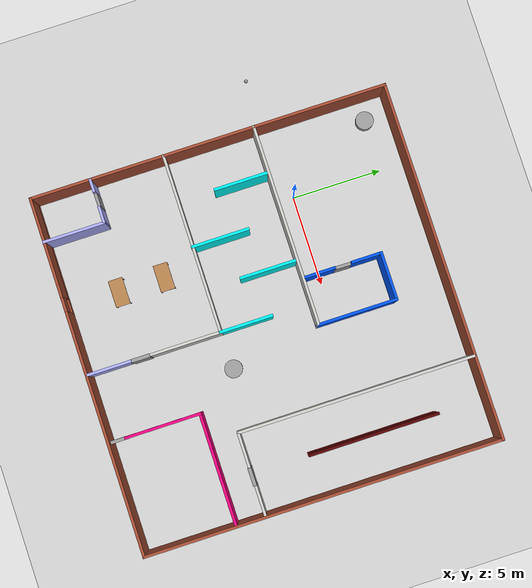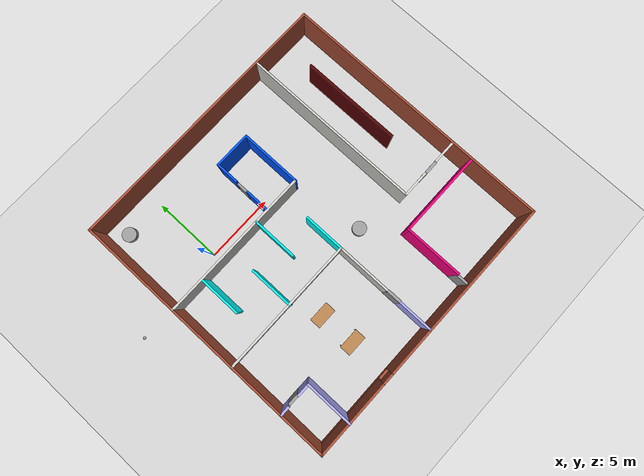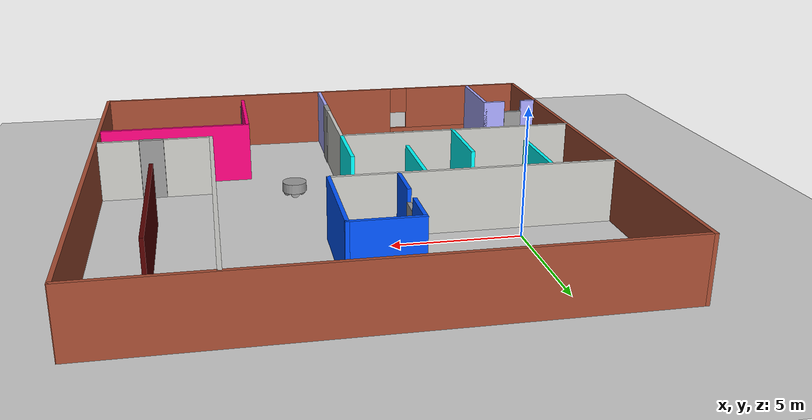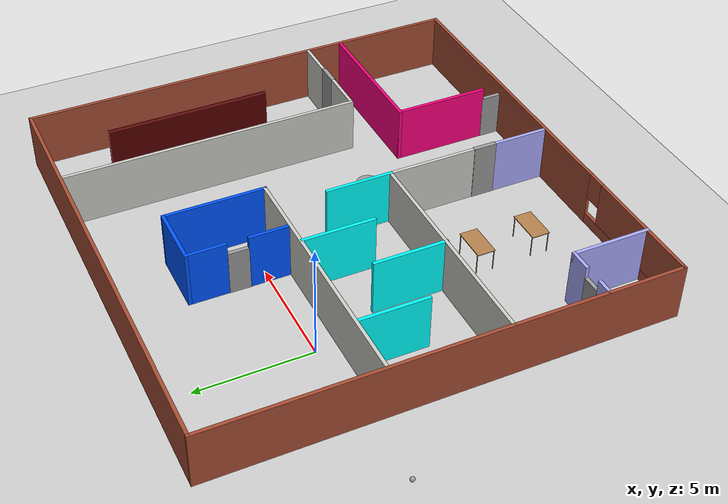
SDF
<sdf version="1.6">
 <world name="default">
  <plugin name="hello" filename="libhello.so"/>
  <light name="sun" type="directional">
   <pose>0 0 10 0 -0 0</pose>
   <diffuse>0.8 0.8 0.8 1</diffuse>
   <specular>0.2 0.2 0.2 1</specular>
   <attenuation>
    <range>1000</range>
    <constant>0.9</constant>
    <linear>0.01</linear>
    <quadratic>0.001</quadratic>
   </attenuation>
   <direction>-0.5 0.1 -0.9</direction>
  </light>
  <model name="ground_plane">
   <static>1</static>
   <link name="link">
    <collision name="collision">
     <geometry><plane><normal>0 0 1</normal><size>100 100</size></plane></geometry>
     <surface>
      <contact><collide_bitmask>65535</collide_bitmask></contact>
      <friction><ode><mu>100</mu><mu2>50</mu2></ode></friction>
     </surface>
    </collision>
    <visual name="visual">
     <cast_shadows>0</cast_shadows>
     <geometry><plane><normal>0 0 1</normal><size>100 100</size></plane></geometry>
     <material>
      <script><uri>file://media/materials/scripts/gazebo.material</uri><name>Gazebo/Grey</name></script>
     </material>
    </visual>
   </link>
  </model>
  <gravity>0 0 -9.8</gravity>
  <magnetic_field>6e-06 2.3e-05 -4.2e-05</magnetic_field>
  <atmosphere type="adiabatic"/>
  <physics name="default_physics" default="0" type="ode">
   <max_step_size>0.001</max_step_size>
   <real_time_factor>1</real_time_factor>
   <real_time_update_rate>1000</real_time_update_rate>
  </physics>
  <scene><ambient>0.4 0.4 0.4 1</ambient><background>0.7 0.7 0.7 1</background><shadows>1</shadows></scene>
  <spherical_coordinates>
   <surface_model>EARTH_WGS84</surface_model>
   <latitude_deg>0</latitude_deg>
   <longitude_deg>0</longitude_deg>
   <elevation>0</elevation>
   <heading_deg>0</heading_deg>
  </spherical_coordinates>
  <model name="Building">
   <pose>5.94869 -3.53907 0 0 -0 0</pose>
   <link name="Door_0">
    <collision name="Door_0_Collision">
     <geometry><box><size>0.972128 0.2 2.5</size></box></geometry>
     <pose>0 0 1.25 0 -0 0</pose>
    </collision>
    <visual name="Door_0_Visual">
     <pose>0 0 1.25 0 -0 0</pose>
     <geometry><box><size>0.972128 0.2 2.5</size></box></geometry>
     <material>
      <script><uri>file://media/materials/scripts/gazebo.material</uri><name>Gazebo/Grey</name></script>
     </material>
    </visual>
    <pose>7.70751 -3.24538 0 0 0 -3.13779</pose>
   </link>
   <link name="Door_1">
    <collision name="Door_1_Collision">
     <geometry><box><size>1.03118 0.2 2.5</size></box></geometry>
     <pose>0 0 1.25 0 -0 0</pose>
    </collision>
    <visual name="Door_1_Visual">
     <pose>0 0 1.25 0 -0 0</pose>
     <geometry><box><size>1.03118 0.2 2.5</size></box></geometry>
     <material>
      <script><uri>file://media/materials/scripts/gazebo.material</uri><name>Gazebo/Grey</name></script>
     </material>
    </visual>
    <pose>-0.048767 -6.92226 0 0 0 -1.57444</pose>
   </link>
   <link name="Door_2">
    <collision name="Door_2_Collision">
     <geometry><box><size>0.8 0.17 2</size></box></geometry>
     <pose>0 0 1 0 -0 0</pose>
    </collision>
    <visual name="Door_2_Visual">
     <pose>0 0 1 0 -0 0</pose>
     <geometry><box><size>0.8 0.17 2</size></box></geometry>
     <material>
      <script><uri>file://media/materials/scripts/gazebo.material</uri><name>Gazebo/Grey</name></script>
     </material>
    </visual>
    <pose>-8.84079 -6.58459 0 0 -0 0</pose>
   </link>
   <link name="Door_3">
    <collision name="Door_3_Collision">
     <geometry><box><size>0.9 0.17 2</size></box></geometry>
     <pose>0 0 1 0 -0 0</pose>
    </collision>
    <visual name="Door_3_Visual">
     <pose>0 0 1 0 -0 0</pose>
     <geometry><box><size>0.9 0.17 2</size></box></geometry>
     <material>
      <script><uri>file://media/materials/scripts/gazebo.material</uri><name>Gazebo/Grey</name></script>
     </material>
    </visual>
    <pose>-1.42795 4.80727 0 0 -0 1.55779</pose>
   </link>
   <link name="Door_4">
    <collision name="Door_4_Collision">
     <geometry><box><size>0.9 0.17 2</size></box></geometry>
     <pose>0 0 1 0 -0 0</pose>
    </collision>
    <visual name="Door_4_Visual">
     <pose>0 0 1 0 -0 0</pose>
     <geometry><box><size>0.9 0.17 2</size></box></geometry>
     <material>
      <script><uri>file://media/materials/scripts/gazebo.material</uri><name>Gazebo/Grey</name></script>
     </material>
    </visual>
    <pose>3.70998 -9.40953 0 0 -0 1.5725</pose>
   </link>
   <link name="Wall_23">
    <collision name="Wall_23_Collision">
     <geometry><box><size>20 0.15 2.5</size></box></geometry>
     <pose>0 0 1.25 0 -0 0</pose>
    </collision>
    <visual name="Wall_23_Visual">
     <pose>0 0 1.25 0 -0 0</pose>
     <geometry><box><size>20 0.15 2.5</size></box></geometry>
     <material>
      <script><uri>file://media/materials/scripts/gazebo.material</uri><name>Gazebo/Bricks</name></script>
      <ambient>1 1 1 1</ambient>
     </material>
    </visual>
    <pose>-9.93542 0.006571 0 0 -0 1.5708</pose>
   </link>
   <link name="Wall_28">
    <collision name="Wall_28_Collision">
     <geometry><box><size>20 0.15 2.5</size></box></geometry>
     <pose>0 0 1.25 0 -0 0</pose>
    </collision>
    <visual name="Wall_28_Visual">
     <pose>0 0 1.25 0 -0 0</pose>
     <geometry><box><size>20 0.15 2.5</size></box></geometry>
     <material>
      <script><uri>file://media/materials/scripts/gazebo.material</uri><name>Gazebo/Bricks</name></script>
      <ambient>1 1 1 1</ambient>
     </material>
    </visual>
    <pose>9.93542 0.005522 0 0 -0 1.5708</pose>
   </link>
   <link name="Wall_30">
    <collision name="Wall_30_Collision">
     <geometry><box><size>20 0.15 2.5</size></box></geometry>
     <pose>0 0 1.25 0 -0 0</pose>
    </collision>
    <visual name="Wall_30_Visual">
     <pose>0 0 1.25 0 -0 0</pose>
     <geometry><box><size>20 0.15 2.5</size></box></geometry>
     <material>
      <script><uri>file://media/materials/scripts/gazebo.material</uri><name>Gazebo/Bricks</name></script>
      <ambient>1 1 1 1</ambient>
     </material>
    </visual>
    <pose>-0.010419 9.93157 0 0 -0 0</pose>
   </link>
   <link name="Wall_32">
    <pose>0.010419 -9.91948 0 0 -0 3.14159</pose>
    <visual name="Wall_32_Visual_0">
     <pose>-3.18916 0 1.25 0 -0 0</pose>
     <geometry><box><size>13.6217 0.15 2.5</size></box></geometry>
     <material>
      <script><uri>file://media/materials/scripts/gazebo.material</uri><name>Gazebo/Bricks</name></script>
      <ambient>1 1 1 1</ambient>
     </material>
    </visual>
    <collision name="Wall_32_Collision_0">
     <geometry><box><size>13.6217 0.15 2.5</size></box></geometry>
     <pose>-3.18916 0 1.25 0 -0 0</pose>
    </collision>
    <visual name="Wall_32_Visual_1">
     <pose>6.81084 0 0.25 0 -0 0</pose>
     <geometry><box><size>6.37833 0.15 0.5</size></box></geometry>
     <material>
      <script><uri>file://media/materials/scripts/gazebo.material</uri><name>Gazebo/Bricks</name></script>
      <ambient>1 1 1 1</ambient>
     </material>
    </visual>
    <collision name="Wall_32_Collision_1">
     <geometry><box><size>6.37833 0.15 0.5</size></box></geometry>
     <pose>6.81084 0 0.25 0 -0 0</pose>
    </collision>
    <visual name="Wall_32_Visual_2">
     <pose>7.21084 0 1.5 0 -0 0</pose>
     <geometry><box><size>5.57833 0.15 2</size></box></geometry>
     <material>
      <script><uri>file://media/materials/scripts/gazebo.material</uri><name>Gazebo/Bricks</name></script>
      <ambient>1 1 1 1</ambient>
     </material>
    </visual>
    <collision name="Wall_32_Collision_2">
     <geometry><box><size>5.57833 0.15 2</size></box></geometry>
     <pose>7.21084 0 1.5 0 -0 0</pose>
    </collision>
    <visual name="Wall_32_Visual_3">
     <pose>4.02168 0 1.9 0 -0 0</pose>
     <geometry><box><size>0.8 0.15 1.2</size></box></geometry>
     <material>
      <script><uri>file://media/materials/scripts/gazebo.material</uri><name>Gazebo/Bricks</name></script>
      <ambient>1 1 1 1</ambient>
     </material>
    </visual>
    <collision name="Wall_32_Collision_3">
     <geometry><box><size>0.8 0.15 1.2</size></box></geometry>
     <pose>4.02168 0 1.9 0 -0 0</pose>
    </collision>
   </link>
   <link name="Wall_34">
    <collision name="Wall_34_Collision">
     <geometry><box><size>13.25 0.15 2.5</size></box></geometry>
     <pose>0 0 1.25 0 -0 0</pose>
    </collision>
    <visual name="Wall_34_Visual">
     <pose>0 0 1.25 0 -0 0</pose>
     <geometry><box><size>13.25 0.15 2.5</size></box></geometry>
     <material>
      <script><uri>file://media/materials/scripts/gazebo.material</uri><name>Gazebo/CeilingTiled</name></script>
      <ambient>0.666667 0.666667 1 1</ambient>
     </material>
    </visual>
    <pose>5.2903 3.3163 0 0 0 -1.5708</pose>
   </link>
   <link name="Wall_35">
    <collision name="Wall_35_Collision">
     <geometry><box><size>2 0.15 2.5</size></box></geometry>
     <pose>0 0 1.25 0 -0 0</pose>
    </collision>
    <visual name="Wall_35_Visual">
     <pose>0 0 1.25 0 -0 0</pose>
     <geometry><box><size>2 0.15 2.5</size></box></geometry>
     <material>
      <script><uri>file://media/materials/scripts/gazebo.material</uri><name>Gazebo/CeilingTiled</name></script>
      <ambient>0.666667 0.666667 1 1</ambient>
     </material>
    </visual>
    <pose>6.2153 -3.2337 0 0 -0 0</pose>
   </link>
   <link name="Wall_37">
    <collision name="Wall_37_Collision">
     <geometry><box><size>1.75 0.15 2.5</size></box></geometry>
     <pose>0 0 1.25 0 -0 0</pose>
    </collision>
    <visual name="Wall_37_Visual">
     <pose>0 0 1.25 0 -0 0</pose>
     <geometry><box><size>1.75 0.15 2.5</size></box></geometry>
     <material>
      <script><uri>file://media/materials/scripts/gazebo.material</uri><name>Gazebo/CeilingTiled</name></script>
      <ambient>0.666667 0.666667 1 1</ambient>
     </material>
    </visual>
    <pose>9.07667 -3.21244 0 0 -0 0</pose>
   </link>
   <link name="Wall_39">
    <collision name="Wall_39_Collision">
     <geometry><box><size>10 0.15 2.5</size></box></geometry>
     <pose>0 0 1.25 0 -0 0</pose>
    </collision>
    <visual name="Wall_39_Visual">
     <pose>0 0 1.25 0 -0 0</pose>
     <geometry><box><size>10 0.15 2.5</size></box></geometry>
     <material>
      <script><uri>file://media/materials/scripts/gazebo.material</uri><name>Gazebo/CeilingTiled</name></script>
      <ambient>0.666667 0.666667 1 1</ambient>
     </material>
    </visual>
    <pose>-4.98053 -2.48727 0 0 -0 0</pose>
   </link>
   <link name="Wall_40">
    <collision name="Wall_40_Collision">
     <geometry><box><size>4 0.15 2.5</size></box></geometry>
     <pose>0 0 1.25 0 -0 0</pose>
    </collision>
    <visual name="Wall_40_Visual">
     <pose>0 0 1.25 0 -0 0</pose>
     <geometry><box><size>4 0.15 2.5</size></box></geometry>
     <material>
      <script><uri>file://media/materials/scripts/gazebo.material</uri><name>Gazebo/CeilingTiled</name></script>
      <ambient>0.666667 0.666667 1 1</ambient>
     </material>
    </visual>
    <pose>-0.055526 -4.41227 0 0 0 -1.5708</pose>
   </link>
   <link name="Wall_42">
    <collision name="Wall_42_Collision">
     <geometry><box><size>2.5 0.15 2.5</size></box></geometry>
     <pose>0 0 1.25 0 -0 0</pose>
    </collision>
    <visual name="Wall_42_Visual">
     <pose>0 0 1.25 0 -0 0</pose>
     <geometry><box><size>2.5 0.15 2.5</size></box></geometry>
     <material>
      <script><uri>file://media/materials/scripts/gazebo.material</uri><name>Gazebo/Grey</name></script>
      <ambient>0.666667 0.666667 1 1</ambient>
     </material>
    </visual>
    <pose>-0.065577 -8.66277 0 0 -0 1.5708</pose>
   </link>
   <link name="Wall_44">
    <collision name="Wall_44_Collision">
     <geometry><box><size>0.75 0.15 2.5</size></box></geometry>
     <pose>0 0 1.25 0 -0 0</pose>
    </collision>
    <visual name="Wall_44_Visual">
     <pose>0 0 1.25 0 -0 0</pose>
     <geometry><box><size>0.75 0.15 2.5</size></box></geometry>
     <material>
      <script><uri>file://media/materials/scripts/gazebo.material</uri><name>Gazebo/Grey</name></script>
      <ambient>0.666667 0.666667 1 1</ambient>
     </material>
    </visual>
    <pose>-9.60271 -6.58745 0 0 -0 0</pose>
   </link>
   <link name="Wall_46">
    <collision name="Wall_46_Collision">
     <geometry><box><size>1 0.15 2.5</size></box></geometry>
     <pose>0 0 1.25 0 -0 0</pose>
    </collision>
    <visual name="Wall_46_Visual">
     <pose>0 0 1.25 0 -0 0</pose>
     <geometry><box><size>1 0.15 2.5</size></box></geometry>
     <material>
      <script><uri>file://media/materials/scripts/gazebo.material</uri><name>Gazebo/Grey</name></script>
      <ambient>0.666667 0.666667 1 1</ambient>
     </material>
    </visual>
    <pose>-7.93389 -6.58157 0 0 -0 0</pose>
   </link>
   <link name="Wall_49">
    <collision name="Wall_49_Collision">
     <geometry><box><size>3.5 0.15 2.5</size></box></geometry>
     <pose>0 0 1.25 0 -0 0</pose>
    </collision>
    <visual name="Wall_49_Visual">
     <pose>0 0 1.25 0 -0 0</pose>
     <geometry><box><size>3.5 0.15 2.5</size></box></geometry>
     <material>
      <script><uri>file://media/materials/scripts/gazebo.material</uri><name>Gazebo/Grey</name></script>
      <ambient>0.666667 0.666667 1 1</ambient>
     </material>
    </visual>
    <pose>-7.50889 -8.25657 0 0 0 -1.5708</pose>
   </link>
   <link name="Wall_51">
    <collision name="Wall_51_Collision">
     <geometry><box><size>11.25 0.15 2.5</size></box></geometry>
     <pose>0 0 1.25 0 -0 0</pose>
    </collision>
    <visual name="Wall_51_Visual">
     <pose>0 0 1.25 0 -0 0</pose>
     <geometry><box><size>11.25 0.15 2.5</size></box></geometry>
     <material>
      <script><uri>file://media/materials/scripts/gazebo.material</uri><name>Gazebo/CeilingTiled</name></script>
      <ambient>0.666667 0.666667 1 1</ambient>
     </material>
    </visual>
    <pose>-4.37164 2.57907 0 0 -0 0</pose>
   </link>
   <link name="Wall_53">
    <collision name="Wall_53_Collision">
     <geometry><box><size>3 0.15 2.5</size></box></geometry>
     <pose>0 0 1.25 0 -0 0</pose>
    </collision>
    <visual name="Wall_53_Visual">
     <pose>0 0 1.25 0 -0 0</pose>
     <geometry><box><size>3 0.15 2.5</size></box></geometry>
     <material>
      <script><uri>file://media/materials/scripts/gazebo.material</uri><name>Gazebo/Grey</name></script>
      <ambient>0 1 1 1</ambient>
     </material>
    </visual>
    <pose>-7.3685 1.01193 0 0 0 -1.5708</pose>
   </link>
   <link name="Wall_55">
    <collision name="Wall_55_Collision">
     <geometry><box><size>3.25 0.15 2.5</size></box></geometry>
     <pose>0 0 1.25 0 -0 0</pose>
    </collision>
    <visual name="Wall_55_Visual">
     <pose>0 0 1.25 0 -0 0</pose>
     <geometry><box><size>3.25 0.15 2.5</size></box></geometry>
     <material>
      <script><uri>file://media/materials/scripts/gazebo.material</uri><name>Gazebo/Grey</name></script>
      <ambient>0 1 1 1</ambient>
     </material>
    </visual>
    <pose>-4.82357 -0.965361 0 0 -0 1.5708</pose>
   </link>
   <link name="Wall_57">
    <collision name="Wall_57_Collision">
     <geometry><box><size>3.25 0.15 2.5</size></box></geometry>
     <pose>0 0 1.25 0 -0 0</pose>
    </collision>
    <visual name="Wall_57_Visual">
     <pose>0 0 1.25 0 -0 0</pose>
     <geometry><box><size>3.25 0.15 2.5</size></box></geometry>
     <material>
      <script><uri>file://media/materials/scripts/gazebo.material</uri><name>Gazebo/Grey</name></script>
      <ambient>0 1 1 1</ambient>
     </material>
    </visual>
    <pose>-2.4506 0.990104 0 0 0 -1.5708</pose>
   </link>
   <link name="Wall_59">
    <collision name="Wall_59_Collision">
     <geometry><box><size>3 0.15 2.5</size></box></geometry>
     <pose>0 0 1.25 0 -0 0</pose>
    </collision>
    <visual name="Wall_59_Visual">
     <pose>0 0 1.25 0 -0 0</pose>
     <geometry><box><size>3 0.15 2.5</size></box></geometry>
     <material>
      <script><uri>file://media/materials/scripts/gazebo.material</uri><name>Gazebo/Grey</name></script>
      <ambient>0 1 1 1</ambient>
     </material>
    </visual>
    <pose>-0.055526 -1.06227 0 0 -0 1.5708</pose>
   </link>
   <link name="Wall_61">
    <collision name="Wall_61_Collision">
     <geometry><box><size>7.25 0.15 2.5</size></box></geometry>
     <pose>0 0 1.25 0 -0 0</pose>
    </collision>
    <visual name="Wall_61_Visual">
     <pose>0 0 1.25 0 -0 0</pose>
     <geometry><box><size>7.25 0.15 2.5</size></box></geometry>
     <material>
      <script><uri>file://media/materials/scripts/gazebo.material</uri><name>Gazebo/Grey</name></script>
      <ambient>0.333333 0 0 1</ambient>
     </material>
    </visual>
    <pose>7.58521 3.55151 0 0 0 -1.5708</pose>
   </link>
   <link name="Wall_63">
    <collision name="Wall_63_Collision">
     <geometry><box><size>4.5 0.15 2.5</size></box></geometry>
     <pose>0 0 1.25 0 -0 0</pose>
    </collision>
    <visual name="Wall_63_Visual">
     <pose>0 0 1.25 0 -0 0</pose>
     <geometry><box><size>4.5 0.15 2.5</size></box></geometry>
     <material>
      <script><uri>file://media/materials/scripts/gazebo.material</uri><name>Gazebo/Grey</name></script>
      <ambient>0 0.333333 1 1</ambient>
     </material>
    </visual>
    <pose>1.17836 4.75407 0 0 -0 1.5708</pose>
   </link>
   <link name="Wall_64">
    <collision name="Wall_64_Collision">
     <geometry><box><size>2.75 0.15 2.5</size></box></geometry>
     <pose>0 0 1.25 0 -0 0</pose>
    </collision>
    <visual name="Wall_64_Visual">
     <pose>0 0 1.25 0 -0 0</pose>
     <geometry><box><size>2.75 0.15 2.5</size></box></geometry>
     <material>
      <script><uri>file://media/materials/scripts/gazebo.material</uri><name>Gazebo/Grey</name></script>
      <ambient>0 0.333333 1 1</ambient>
     </material>
    </visual>
    <pose>-0.12164 6.92907 0 0 -0 3.14159</pose>
   </link>
   <link name="Wall_65">
    <collision name="Wall_65_Collision">
     <geometry><box><size>1.75 0.15 2.5</size></box></geometry>
     <pose>0 0 1.25 0 -0 0</pose>
    </collision>
    <visual name="Wall_65_Visual">
     <pose>0 0 1.25 0 -0 0</pose>
     <geometry><box><size>1.75 0.15 2.5</size></box></geometry>
     <material>
      <script><uri>file://media/materials/scripts/gazebo.material</uri><name>Gazebo/Grey</name></script>
      <ambient>0 0.333333 1 1</ambient>
     </material>
    </visual>
    <pose>-1.42164 6.12907 0 0 0 -1.5708</pose>
   </link>
   <link name="Wall_67">
    <collision name="Wall_67_Collision">
     <geometry><box><size>1.75 0.15 2.5</size></box></geometry>
     <pose>0 0 1.25 0 -0 0</pose>
    </collision>
    <visual name="Wall_67_Visual">
     <pose>0 0 1.25 0 -0 0</pose>
     <geometry><box><size>1.75 0.15 2.5</size></box></geometry>
     <material>
      <script><uri>file://media/materials/scripts/gazebo.material</uri><name>Gazebo/Grey</name></script>
      <ambient>0 0.333333 1 1</ambient>
     </material>
    </visual>
    <pose>-1.4314 3.49864 0 0 -0 1.5708</pose>
   </link>
   <link name="Wall_71">
    <collision name="Wall_71_Collision">
     <geometry><box><size>6.25 0.15 2.5</size></box></geometry>
     <pose>0 0 1.25 0 -0 0</pose>
    </collision>
    <visual name="Wall_71_Visual">
     <pose>0 0 1.25 0 -0 0</pose>
     <geometry><box><size>6.25 0.15 2.5</size></box></geometry>
     <material>
      <script><uri>file://media/materials/scripts/gazebo.material</uri><name>Gazebo/Grey</name></script>
      <ambient>1 0 0.498039 1</ambient>
     </material>
    </visual>
    <pose>6.75472 -4.83878 0 0 -0 0</pose>
   </link>
   <link name="Wall_73">
    <collision name="Wall_73_Collision">
     <geometry><box><size>4.25 0.15 2.5</size></box></geometry>
     <pose>0 0 1.25 0 -0 0</pose>
    </collision>
    <visual name="Wall_73_Visual">
     <pose>0 0 1.25 0 -0 0</pose>
     <geometry><box><size>4.25 0.15 2.5</size></box></geometry>
     <material>
      <script><uri>file://media/materials/scripts/gazebo.material</uri><name>Gazebo/Grey</name></script>
      <ambient>1 0 0.498039 1</ambient>
     </material>
    </visual>
    <pose>3.70472 -6.88878 0 0 0 -1.5708</pose>
   </link>
   <static>1</static>
  </model>
  <model name="table">
   <static>1</static>
   <link name="link">
    <collision name="surface">
     <pose>0 0 1 0 -0 0</pose>
     <geometry><box><size>1.5 0.8 0.03</size></box></geometry>
     <surface><friction><ode><mu>0.6</mu><mu2>0.6</mu2></ode></friction></surface>
    </collision>
    <visual name="visual1">
     <pose>0 0 1 0 -0 0</pose>
     <geometry><box><size>1.5 0.8 0.03</size></box></geometry>
     <material>
      <script><uri>file://media/materials/scripts/gazebo.material</uri><name>Gazebo/Wood</name></script>
     </material>
    </visual>
    <collision name="front_left_leg">
     <pose>0.68 0.38 0.5 0 -0 0</pose>
     <geometry><cylinder><radius>0.02</radius><length>1</length></cylinder></geometry>
    </collision>
    <visual name="front_left_leg">
     <pose>0.68 0.38 0.5 0 -0 0</pose>
     <geometry><cylinder><radius>0.02</radius><length>1</length></cylinder></geometry>
     <material>
      <script><uri>file://media/materials/scripts/gazebo.material</uri><name>Gazebo/Grey</name></script>
     </material>
    </visual>
    <collision name="front_right_leg">
     <pose>0.68 -0.38 0.5 0 -0 0</pose>
     <geometry><cylinder><radius>0.02</radius><length>1</length></cylinder></geometry>
    </collision>
    <visual name="front_right_leg">
     <pose>0.68 -0.38 0.5 0 -0 0</pose>
     <geometry><cylinder><radius>0.02</radius><length>1</length></cylinder></geometry>
     <material>
      <script><uri>file://media/materials/scripts/gazebo.material</uri><name>Gazebo/Grey</name></script>
     </material>
    </visual>
    <collision name="back_right_leg">
     <pose>-0.68 -0.38 0.5 0 -0 0</pose>
     <geometry><cylinder><radius>0.02</radius><length>1</length></cylinder></geometry>
    </collision>
    <visual name="back_right_leg">
     <pose>-0.68 -0.38 0.5 0 -0 0</pose>
     <geometry><cylinder><radius>0.02</radius><length>1</length></cylinder></geometry>
     <material>
      <script><uri>file://media/materials/scripts/gazebo.material</uri><name>Gazebo/Grey</name></script>
     </material>
    </visual>
    <collision name="back_left_leg">
     <pose>-0.68 0.38 0.5 0 -0 0</pose>
     <geometry><cylinder><radius>0.02</radius><length>1</length></cylinder></geometry>
    </collision>
    <visual name="back_left_leg">
     <pose>-0.68 0.38 0.5 0 -0 0</pose>
     <geometry><cylinder><radius>0.02</radius><length>1</length></cylinder></geometry>
     <material>
      <script><uri>file://media/materials/scripts/gazebo.material</uri><name>Gazebo/Grey</name></script>
     </material>
    </visual>
   </link>
   <pose>2.04359 -8.042 0 0 -0 0</pose>
  </model>
  <model name="table_0">
   <static>1</static>
   <link name="link">
    <collision name="surface">
     <pose>0 0 1 0 -0 0</pose>
     <geometry><box><size>1.5 0.8 0.03</size></box></geometry>
     <surface><friction><ode><mu>0.6</mu><mu2>0.6</mu2></ode></friction></surface>
    </collision>
    <visual name="visual1">
     <pose>0 0 1 0 -0 0</pose>
     <geometry><box><size>1.5 0.8 0.03</size></box></geometry>
     <material>
      <script><uri>file://media/materials/scripts/gazebo.material</uri><name>Gazebo/Wood</name></script>
     </material>
    </visual>
    <collision name="front_left_leg">
     <pose>0.68 0.38 0.5 0 -0 0</pose>
     <geometry><cylinder><radius>0.02</radius><length>1</length></cylinder></geometry>
    </collision>
    <visual name="front_left_leg">
     <pose>0.68 0.38 0.5 0 -0 0</pose>
     <geometry><cylinder><radius>0.02</radius><length>1</length></cylinder></geometry>
     <material>
      <script><uri>file://media/materials/scripts/gazebo.material</uri><name>Gazebo/Grey</name></script>
     </material>
    </visual>
    <collision name="front_right_leg">
     <pose>0.68 -0.38 0.5 0 -0 0</pose>
     <geometry><cylinder><radius>0.02</radius><length>1</length></cylinder></geometry>
    </collision>
    <visual name="front_right_leg">
     <pose>0.68 -0.38 0.5 0 -0 0</pose>
     <geometry><cylinder><radius>0.02</radius><length>1</length></cylinder></geometry>
     <material>
      <script><uri>file://media/materials/scripts/gazebo.material</uri><name>Gazebo/Grey</name></script>
     </material>
    </visual>
    <collision name="back_right_leg">
     <pose>-0.68 -0.38 0.5 0 -0 0</pose>
     <geometry><cylinder><radius>0.02</radius><length>1</length></cylinder></geometry>
    </collision>
    <visual name="back_right_leg">
     <pose>-0.68 -0.38 0.5 0 -0 0</pose>
     <geometry><cylinder><radius>0.02</radius><length>1</length></cylinder></geometry>
     <material>
      <script><uri>file://media/materials/scripts/gazebo.material</uri><name>Gazebo/Grey</name></script>
     </material>
    </visual>
    <collision name="back_left_leg">
     <pose>-0.68 0.38 0.5 0 -0 0</pose>
     <geometry><cylinder><radius>0.02</radius><length>1</length></cylinder></geometry>
    </collision>
    <visual name="back_left_leg">
     <pose>-0.68 0.38 0.5 0 -0 0</pose>
     <geometry><cylinder><radius>0.02</radius><length>1</length></cylinder></geometry>
     <material>
      <script><uri>file://media/materials/scripts/gazebo.material</uri><name>Gazebo/Grey</name></script>
     </material>
    </visual>
   </link>
   <pose>2.07866 -10.5983 0 0 -0 0</pose>
  </model>
  <model name="myrobot">
   <link name="link_0">
    <pose>0 0 0.18 0 -0 0</pose>
    <inertial>
     <mass>1</mass>
     <inertia><ixx>0.145833</ixx><ixy>0</ixy><ixz>0</ixz><iyy>0.145833</iyy><iyz>0</iyz><izz>0.125</izz></inertia>
    </inertial>
    <visual name="visual">
     <geometry><cylinder><radius>0.5</radius><length>0.4</length></cylinder></geometry>
     <material>
      <lighting>1</lighting>
      <script><uri>file://media/materials/scripts/gazebo.material</uri><name>Gazebo/Grey</name></script>
      <shader type="pixel"><normal_map>__default__</normal_map></shader>
      <ambient>0.3 0.3 0.3 1</ambient>
      <diffuse>0.7 0.7 0.7 1</diffuse>
      <specular>0.01 0.01 0.01 1</specular>
      <emissive>0 0 0 1</emissive>
     </material>
    </visual>
    <collision name="collision">
     <geometry><cylinder><radius>0.5</radius><length>0.4</length></cylinder></geometry>
     <surface>
      <friction>
       <ode><mu>1</mu><mu2>1</mu2><fdir1>0 0 0</fdir1><slip1>0</slip1><slip2>0</slip2></ode>
       <torsional>
        <coefficient>1</coefficient>
        <patch_radius>0</patch_radius>
        <surface_radius>0</surface_radius>
        <use_patch_radius>1</use_patch_radius>
        <ode><slip>0</slip></ode>
       </torsional>
      </friction>
      <bounce><restitution_coefficient>0</restitution_coefficient><threshold>1e+06</threshold></bounce>
      <contact>
       <collide_without_contact>0</collide_without_contact>
       <collide_without_contact_bitmask>1</collide_without_contact_bitmask>
       <collide_bitmask>1</collide_bitmask>
       <ode>
        <soft_cfm>0</soft_cfm>
        <soft_erp>0.2</soft_erp>
        <kp>1e+13</kp>
        <kd>1</kd>
        <max_vel>0.01</max_vel>
        <min_depth>0</min_depth>
       </ode>
       <bullet>
        <split_impulse>1</split_impulse>
        <split_impulse_penetration_threshold>-0.01</split_impulse_penetration_threshold>
        <soft_cfm>0</soft_cfm>
        <soft_erp>0.2</soft_erp>
        <kp>1e+13</kp>
        <kd>1</kd>
       </bullet>
      </contact>
     </surface>
    </collision>
   </link>
   <link name="link_1">
    <pose>0 -0.3 -0.02 1.5707 -0 0</pose>
    <inertial>
     <mass>1</mass>
     <inertia><ixx>0.145833</ixx><ixy>0</ixy><ixz>0</ixz><iyy>0.145833</iyy><iyz>0</iyz><izz>0.125</izz></inertia>
    </inertial>
    <visual name="visual">
     <geometry><cylinder><radius>0.2</radius><length>0.1</length></cylinder></geometry>
     <material>
      <lighting>1</lighting>
      <script><uri>file://media/materials/scripts/gazebo.material</uri><name>Gazebo/Grey</name></script>
      <shader type="pixel"><normal_map>__default__</normal_map></shader>
      <ambient>0.3 0.3 0.3 1</ambient>
      <diffuse>0.7 0.7 0.7 1</diffuse>
      <specular>0.01 0.01 0.01 1</specular>
      <emissive>0 0 0 1</emissive>
     </material>
    </visual>
    <collision name="collision">
     <geometry><cylinder><radius>0.2</radius><length>0.1</length></cylinder></geometry>
     <surface>
      <friction>
       <ode><mu>1</mu><mu2>1</mu2><fdir1>0 0 0</fdir1><slip1>0</slip1><slip2>0</slip2></ode>
       <torsional>
        <coefficient>1</coefficient>
        <patch_radius>0</patch_radius>
        <surface_radius>0</surface_radius>
        <use_patch_radius>1</use_patch_radius>
        <ode><slip>0</slip></ode>
       </torsional>
      </friction>
      <bounce><restitution_coefficient>0</restitution_coefficient><threshold>1e+06</threshold></bounce>
      <contact>
       <collide_without_contact>0</collide_without_contact>
       <collide_without_contact_bitmask>1</collide_without_contact_bitmask>
       <collide_bitmask>1</collide_bitmask>
       <ode>
        <soft_cfm>0</soft_cfm>
        <soft_erp>0.2</soft_erp>
        <kp>1e+13</kp>
        <kd>1</kd>
        <max_vel>0.01</max_vel>
        <min_depth>0</min_depth>
       </ode>
       <bullet>
        <split_impulse>1</split_impulse>
        <split_impulse_penetration_threshold>-0.01</split_impulse_penetration_threshold>
        <soft_cfm>0</soft_cfm>
        <soft_erp>0.2</soft_erp>
        <kp>1e+13</kp>
        <kd>1</kd>
       </bullet>
      </contact>
     </surface>
    </collision>
   </link>
   <link name="link_1_clone">
    <pose>0 0.3 -0.02 1.5707 -0 0</pose>
    <inertial>
     <mass>1</mass>
     <inertia><ixx>0.145833</ixx><ixy>0</ixy><ixz>0</ixz><iyy>0.145833</iyy><iyz>0</iyz><izz>0.125</izz></inertia>
    </inertial>
    <visual name="visual">
     <geometry><cylinder><radius>0.2</radius><length>0.1</length></cylinder></geometry>
     <material>
      <lighting>1</lighting>
      <script><uri>file://media/materials/scripts/gazebo.material</uri><name>Gazebo/Grey</name></script>
      <shader type="pixel"><normal_map>__default__</normal_map></shader>
      <ambient>0.3 0.3 0.3 1</ambient>
      <diffuse>0.7 0.7 0.7 1</diffuse>
      <specular>0.01 0.01 0.01 1</specular>
      <emissive>0 0 0 1</emissive>
     </material>
    </visual>
    <collision name="collision">
     <geometry><cylinder><radius>0.2</radius><length>0.1</length></cylinder></geometry>
     <surface>
      <friction>
       <ode><mu>1</mu><mu2>1</mu2><fdir1>0 0 0</fdir1><slip1>0</slip1><slip2>0</slip2></ode>
       <torsional>
        <coefficient>1</coefficient>
        <patch_radius>0</patch_radius>
        <surface_radius>0</surface_radius>
        <use_patch_radius>1</use_patch_radius>
        <ode><slip>0</slip></ode>
       </torsional>
      </friction>
      <bounce><restitution_coefficient>0</restitution_coefficient><threshold>1e+06</threshold></bounce>
      <contact>
       <collide_without_contact>0</collide_without_contact>
       <collide_without_contact_bitmask>1</collide_without_contact_bitmask>
       <collide_bitmask>1</collide_bitmask>
       <ode>
        <soft_cfm>0</soft_cfm>
        <soft_erp>0.2</soft_erp>
        <kp>1e+13</kp>
        <kd>1</kd>
        <max_vel>0.01</max_vel>
        <min_depth>0</min_depth>
       </ode>
       <bullet>
        <split_impulse>1</split_impulse>
        <split_impulse_penetration_threshold>-0.01</split_impulse_penetration_threshold>
        <soft_cfm>0</soft_cfm>
        <soft_erp>0.2</soft_erp>
        <kp>1e+13</kp>
        <kd>1</kd>
       </bullet>
      </contact>
     </surface>
    </collision>
   </link>
   <link name="link_3">
    <pose>0.3 0 -0.07 0 -0 0</pose>
    <inertial>
     <mass>1</mass>
     <inertia><ixx>0.1</ixx><ixy>0</ixy><ixz>0</ixz><iyy>0.1</iyy><iyz>0</iyz><izz>0.1</izz></inertia>
    </inertial>
    <visual name="visual">
     <geometry><sphere><radius>0.15</radius></sphere></geometry>
     <material>
      <lighting>1</lighting>
      <script><uri>file://media/materials/scripts/gazebo.material</uri><name>Gazebo/Grey</name></script>
      <shader type="pixel"><normal_map>__default__</normal_map></shader>
      <ambient>0.3 0.3 0.3 1</ambient>
      <diffuse>0.7 0.7 0.7 1</diffuse>
      <specular>0.01 0.01 0.01 1</specular>
      <emissive>0 0 0 1</emissive>
     </material>
    </visual>
    <collision name="collision">
     <geometry><sphere><radius>0.15</radius></sphere></geometry>
     <surface>
      <friction>
       <ode><mu>1</mu><mu2>1</mu2><fdir1>0 0 0</fdir1><slip1>0</slip1><slip2>0</slip2></ode>
       <torsional>
        <coefficient>1</coefficient>
        <patch_radius>0</patch_radius>
        <surface_radius>0</surface_radius>
        <use_patch_radius>1</use_patch_radius>
        <ode><slip>0</slip></ode>
       </torsional>
      </friction>
      <bounce><restitution_coefficient>0</restitution_coefficient><threshold>1e+06</threshold></bounce>
      <contact>
       <collide_without_contact>0</collide_without_contact>
       <collide_without_contact_bitmask>1</collide_without_contact_bitmask>
       <collide_bitmask>1</collide_bitmask>
       <ode>
        <soft_cfm>0</soft_cfm>
        <soft_erp>0.2</soft_erp>
        <kp>1e+13</kp>
        <kd>1</kd>
        <max_vel>0.01</max_vel>
        <min_depth>0</min_depth>
       </ode>
       <bullet>
        <split_impulse>1</split_impulse>
        <split_impulse_penetration_threshold>-0.01</split_impulse_penetration_threshold>
        <soft_cfm>0</soft_cfm>
        <soft_erp>0.2</soft_erp>
        <kp>1e+13</kp>
        <kd>1</kd>
       </bullet>
      </contact>
     </surface>
    </collision>
   </link>
   <link name="link_3_clone">
    <pose>-0.3 0 -0.07 0 -0 0</pose>
    <inertial>
     <mass>1</mass>
     <inertia><ixx>0.1</ixx><ixy>0</ixy><ixz>0</ixz><iyy>0.1</iyy><iyz>0</iyz><izz>0.1</izz></inertia>
    </inertial>
    <visual name="visual">
     <geometry><sphere><radius>0.15</radius></sphere></geometry>
     <material>
      <lighting>1</lighting>
      <script><uri>file://media/materials/scripts/gazebo.material</uri><name>Gazebo/Grey</name></script>
      <shader type="pixel"><normal_map>__default__</normal_map></shader>
      <ambient>0.3 0.3 0.3 1</ambient>
      <diffuse>0.7 0.7 0.7 1</diffuse>
      <specular>0.01 0.01 0.01 1</specular>
      <emissive>0 0 0 1</emissive>
     </material>
    </visual>
    <collision name="collision">
     <geometry><sphere><radius>0.15</radius></sphere></geometry>
     <surface>
      <friction>
       <ode><mu>1</mu><mu2>1</mu2><fdir1>0 0 0</fdir1><slip1>0</slip1><slip2>0</slip2></ode>
       <torsional>
        <coefficient>1</coefficient>
        <patch_radius>0</patch_radius>
        <surface_radius>0</surface_radius>
        <use_patch_radius>1</use_patch_radius>
        <ode><slip>0</slip></ode>
       </torsional>
      </friction>
      <bounce><restitution_coefficient>0</restitution_coefficient><threshold>1e+06</threshold></bounce>
      <contact>
       <collide_without_contact>0</collide_without_contact>
       <collide_without_contact_bitmask>1</collide_without_contact_bitmask>
       <collide_bitmask>1</collide_bitmask>
       <ode>
        <soft_cfm>0</soft_cfm>
        <soft_erp>0.2</soft_erp>
        <kp>1e+13</kp>
        <kd>1</kd>
        <max_vel>0.01</max_vel>
        <min_depth>0</min_depth>
       </ode>
       <bullet>
        <split_impulse>1</split_impulse>
        <split_impulse_penetration_threshold>-0.01</split_impulse_penetration_threshold>
        <soft_cfm>0</soft_cfm>
        <soft_erp>0.2</soft_erp>
        <kp>1e+13</kp>
        <kd>1</kd>
       </bullet>
      </contact>
     </surface>
    </collision>
   </link>
   <joint name="link_0_JOINT_0" type="revolute">
    <parent>link_0</parent>
    <child>link_1</child>
    <axis>
     <xyz>0 0 -1</xyz>
     <use_parent_model_frame>0</use_parent_model_frame>
     <limit>
      <lower>-1.79769e+308</lower>
      <upper>1.79769e+308</upper>
      <effort>-1</effort>
      <velocity>-1</velocity>
     </limit>
     <dynamics>
      <spring_reference>0</spring_reference>
      <spring_stiffness>0</spring_stiffness>
      <damping>0</damping>
     </dynamics>
    </axis>
    <physics>
     <ode><limit><cfm>0</cfm><erp>0.2</erp></limit><suspension><cfm>0</cfm><erp>0.2</erp></suspension></ode>
    </physics>
   </joint>
   <joint name="link_0_JOINT_1" type="revolute">
    <parent>link_0</parent>
    <child>link_1_clone</child>
    <axis>
     <xyz>0 0 1</xyz>
     <use_parent_model_frame>0</use_parent_model_frame>
     <limit>
      <lower>-1.79769e+308</lower>
      <upper>1.79769e+308</upper>
      <effort>-1</effort>
      <velocity>-1</velocity>
     </limit>
     <dynamics>
      <spring_reference>0</spring_reference>
      <spring_stiffness>0</spring_stiffness>
      <damping>0</damping>
     </dynamics>
    </axis>
    <physics>
     <ode><limit><cfm>0</cfm><erp>0.2</erp></limit><suspension><cfm>0</cfm><erp>0.2</erp></suspension></ode>
    </physics>
   </joint>
   <joint name="link_0_JOINT_2" type="ball">
    <parent>link_0</parent>
    <child>link_3</child>
    <physics>
     <ode><limit><cfm>0</cfm><erp>0.2</erp></limit><suspension><cfm>0</cfm><erp>0.2</erp></suspension></ode>
    </physics>
   </joint>
   <joint name="link_0_JOINT_3" type="ball">
    <parent>link_0</parent>
    <child>link_3_clone</child>
    <physics>
     <ode><limit><cfm>0</cfm><erp>0.2</erp></limit><suspension><cfm>0</cfm><erp>0.2</erp></suspension></ode>
    </physics>
   </joint>
   <static>0</static>
   <pose>7.91086 -5.99638 0.220005 0 1.6e-05 0.001158</pose>
  </model>
  <model name="myrobot_0">
   <link name="link_0">
    <pose>0 0 0.18 0 -0 0</pose>
    <inertial>
     <mass>1</mass>
     <inertia><ixx>0.145833</ixx><ixy>0</ixy><ixz>0</ixz><iyy>0.145833</iyy><iyz>0</iyz><izz>0.125</izz></inertia>
    </inertial>
    <visual name="visual">
     <geometry><cylinder><radius>0.5</radius><length>0.4</length></cylinder></geometry>
     <material>
      <lighting>1</lighting>
      <script><uri>file://media/materials/scripts/gazebo.material</uri><name>Gazebo/Grey</name></script>
      <shader type="pixel"><normal_map>__default__</normal_map></shader>
      <ambient>0.3 0.3 0.3 1</ambient>
      <diffuse>0.7 0.7 0.7 1</diffuse>
      <specular>0.01 0.01 0.01 1</specular>
      <emissive>0 0 0 1</emissive>
     </material>
    </visual>
    <collision name="collision">
     <geometry><cylinder><radius>0.5</radius><length>0.4</length></cylinder></geometry>
     <surface>
      <friction>
       <ode><mu>1</mu><mu2>1</mu2><fdir1>0 0 0</fdir1><slip1>0</slip1><slip2>0</slip2></ode>
       <torsional>
        <coefficient>1</coefficient>
        <patch_radius>0</patch_radius>
        <surface_radius>0</surface_radius>
        <use_patch_radius>1</use_patch_radius>
        <ode><slip>0</slip></ode>
       </torsional>
      </friction>
      <bounce><restitution_coefficient>0</restitution_coefficient><threshold>1e+06</threshold></bounce>
      <contact>
       <collide_without_contact>0</collide_without_contact>
       <collide_without_contact_bitmask>1</collide_without_contact_bitmask>
       <collide_bitmask>1</collide_bitmask>
       <ode>
        <soft_cfm>0</soft_cfm>
        <soft_erp>0.2</soft_erp>
        <kp>1e+13</kp>
        <kd>1</kd>
        <max_vel>0.01</max_vel>
        <min_depth>0</min_depth>
       </ode>
       <bullet>
        <split_impulse>1</split_impulse>
        <split_impulse_penetration_threshold>-0.01</split_impulse_penetration_threshold>
        <soft_cfm>0</soft_cfm>
        <soft_erp>0.2</soft_erp>
        <kp>1e+13</kp>
        <kd>1</kd>
       </bullet>
      </contact>
     </surface>
    </collision>
   </link>
   <link name="link_1">
    <pose>0 -0.3 -0.02 1.5707 -0 0</pose>
    <inertial>
     <mass>1</mass>
     <inertia><ixx>0.145833</ixx><ixy>0</ixy><ixz>0</ixz><iyy>0.145833</iyy><iyz>0</iyz><izz>0.125</izz></inertia>
    </inertial>
    <visual name="visual">
     <geometry><cylinder><radius>0.2</radius><length>0.1</length></cylinder></geometry>
     <material>
      <lighting>1</lighting>
      <script><uri>file://media/materials/scripts/gazebo.material</uri><name>Gazebo/Grey</name></script>
      <shader type="pixel"><normal_map>__default__</normal_map></shader>
      <ambient>0.3 0.3 0.3 1</ambient>
      <diffuse>0.7 0.7 0.7 1</diffuse>
      <specular>0.01 0.01 0.01 1</specular>
      <emissive>0 0 0 1</emissive>
     </material>
    </visual>
    <collision name="collision">
     <geometry><cylinder><radius>0.2</radius><length>0.1</length></cylinder></geometry>
     <surface>
      <friction>
       <ode><mu>1</mu><mu2>1</mu2><fdir1>0 0 0</fdir1><slip1>0</slip1><slip2>0</slip2></ode>
       <torsional>
        <coefficient>1</coefficient>
        <patch_radius>0</patch_radius>
        <surface_radius>0</surface_radius>
        <use_patch_radius>1</use_patch_radius>
        <ode><slip>0</slip></ode>
       </torsional>
      </friction>
      <bounce><restitution_coefficient>0</restitution_coefficient><threshold>1e+06</threshold></bounce>
      <contact>
       <collide_without_contact>0</collide_without_contact>
       <collide_without_contact_bitmask>1</collide_without_contact_bitmask>
       <collide_bitmask>1</collide_bitmask>
       <ode>
        <soft_cfm>0</soft_cfm>
        <soft_erp>0.2</soft_erp>
        <kp>1e+13</kp>
        <kd>1</kd>
        <max_vel>0.01</max_vel>
        <min_depth>0</min_depth>
       </ode>
       <bullet>
        <split_impulse>1</split_impulse>
        <split_impulse_penetration_threshold>-0.01</split_impulse_penetration_threshold>
        <soft_cfm>0</soft_cfm>
        <soft_erp>0.2</soft_erp>
        <kp>1e+13</kp>
        <kd>1</kd>
       </bullet>
      </contact>
     </surface>
    </collision>
   </link>
   <link name="link_1_clone">
    <pose>0 0.3 -0.02 1.5707 -0 0</pose>
    <inertial>
     <mass>1</mass>
     <inertia><ixx>0.145833</ixx><ixy>0</ixy><ixz>0</ixz><iyy>0.145833</iyy><iyz>0</iyz><izz>0.125</izz></inertia>
    </inertial>
    <visual name="visual">
     <geometry><cylinder><radius>0.2</radius><length>0.1</length></cylinder></geometry>
     <material>
      <lighting>1</lighting>
      <script><uri>file://media/materials/scripts/gazebo.material</uri><name>Gazebo/Grey</name></script>
      <shader type="pixel"><normal_map>__default__</normal_map></shader>
      <ambient>0.3 0.3 0.3 1</ambient>
      <diffuse>0.7 0.7 0.7 1</diffuse>
      <specular>0.01 0.01 0.01 1</specular>
      <emissive>0 0 0 1</emissive>
     </material>
    </visual>
    <collision name="collision">
     <geometry><cylinder><radius>0.2</radius><length>0.1</length></cylinder></geometry>
     <surface>
      <friction>
       <ode><mu>1</mu><mu2>1</mu2><fdir1>0 0 0</fdir1><slip1>0</slip1><slip2>0</slip2></ode>
       <torsional>
        <coefficient>1</coefficient>
        <patch_radius>0</patch_radius>
        <surface_radius>0</surface_radius>
        <use_patch_radius>1</use_patch_radius>
        <ode><slip>0</slip></ode>
       </torsional>
      </friction>
      <bounce><restitution_coefficient>0</restitution_coefficient><threshold>1e+06</threshold></bounce>
      <contact>
       <collide_without_contact>0</collide_without_contact>
       <collide_without_contact_bitmask>1</collide_without_contact_bitmask>
       <collide_bitmask>1</collide_bitmask>
       <ode>
        <soft_cfm>0</soft_cfm>
        <soft_erp>0.2</soft_erp>
        <kp>1e+13</kp>
        <kd>1</kd>
        <max_vel>0.01</max_vel>
        <min_depth>0</min_depth>
       </ode>
       <bullet>
        <split_impulse>1</split_impulse>
        <split_impulse_penetration_threshold>-0.01</split_impulse_penetration_threshold>
        <soft_cfm>0</soft_cfm>
        <soft_erp>0.2</soft_erp>
        <kp>1e+13</kp>
        <kd>1</kd>
       </bullet>
      </contact>
     </surface>
    </collision>
   </link>
   <link name="link_3">
    <pose>0.3 0 -0.07 0 -0 0</pose>
    <inertial>
     <mass>1</mass>
     <inertia><ixx>0.1</ixx><ixy>0</ixy><ixz>0</ixz><iyy>0.1</iyy><iyz>0</iyz><izz>0.1</izz></inertia>
    </inertial>
    <visual name="visual">
     <geometry><sphere><radius>0.15</radius></sphere></geometry>
     <material>
      <lighting>1</lighting>
      <script><uri>file://media/materials/scripts/gazebo.material</uri><name>Gazebo/Grey</name></script>
      <shader type="pixel"><normal_map>__default__</normal_map></shader>
      <ambient>0.3 0.3 0.3 1</ambient>
      <diffuse>0.7 0.7 0.7 1</diffuse>
      <specular>0.01 0.01 0.01 1</specular>
      <emissive>0 0 0 1</emissive>
     </material>
    </visual>
    <collision name="collision">
     <geometry><sphere><radius>0.15</radius></sphere></geometry>
     <surface>
      <friction>
       <ode><mu>1</mu><mu2>1</mu2><fdir1>0 0 0</fdir1><slip1>0</slip1><slip2>0</slip2></ode>
       <torsional>
        <coefficient>1</coefficient>
        <patch_radius>0</patch_radius>
        <surface_radius>0</surface_radius>
        <use_patch_radius>1</use_patch_radius>
        <ode><slip>0</slip></ode>
       </torsional>
      </friction>
      <bounce><restitution_coefficient>0</restitution_coefficient><threshold>1e+06</threshold></bounce>
      <contact>
       <collide_without_contact>0</collide_without_contact>
       <collide_without_contact_bitmask>1</collide_without_contact_bitmask>
       <collide_bitmask>1</collide_bitmask>
       <ode>
        <soft_cfm>0</soft_cfm>
        <soft_erp>0.2</soft_erp>
        <kp>1e+13</kp>
        <kd>1</kd>
        <max_vel>0.01</max_vel>
        <min_depth>0</min_depth>
       </ode>
       <bullet>
        <split_impulse>1</split_impulse>
        <split_impulse_penetration_threshold>-0.01</split_impulse_penetration_threshold>
        <soft_cfm>0</soft_cfm>
        <soft_erp>0.2</soft_erp>
        <kp>1e+13</kp>
        <kd>1</kd>
       </bullet>
      </contact>
     </surface>
    </collision>
   </link>
   <link name="link_3_clone">
    <pose>-0.3 0 -0.07 0 -0 0</pose>
    <inertial>
     <mass>1</mass>
     <inertia><ixx>0.1</ixx><ixy>0</ixy><ixz>0</ixz><iyy>0.1</iyy><iyz>0</iyz><izz>0.1</izz></inertia>
    </inertial>
    <visual name="visual">
     <geometry><sphere><radius>0.15</radius></sphere></geometry>
     <material>
      <lighting>1</lighting>
      <script><uri>file://media/materials/scripts/gazebo.material</uri><name>Gazebo/Grey</name></script>
      <shader type="pixel"><normal_map>__default__</normal_map></shader>
      <ambient>0.3 0.3 0.3 1</ambient>
      <diffuse>0.7 0.7 0.7 1</diffuse>
      <specular>0.01 0.01 0.01 1</specular>
      <emissive>0 0 0 1</emissive>
     </material>
    </visual>
    <collision name="collision">
     <geometry><sphere><radius>0.15</radius></sphere></geometry>
     <surface>
      <friction>
       <ode><mu>1</mu><mu2>1</mu2><fdir1>0 0 0</fdir1><slip1>0</slip1><slip2>0</slip2></ode>
       <torsional>
        <coefficient>1</coefficient>
        <patch_radius>0</patch_radius>
        <surface_radius>0</surface_radius>
        <use_patch_radius>1</use_patch_radius>
        <ode><slip>0</slip></ode>
       </torsional>
      </friction>
      <bounce><restitution_coefficient>0</restitution_coefficient><threshold>1e+06</threshold></bounce>
      <contact>
       <collide_without_contact>0</collide_without_contact>
       <collide_without_contact_bitmask>1</collide_without_contact_bitmask>
       <collide_bitmask>1</collide_bitmask>
       <ode>
        <soft_cfm>0</soft_cfm>
        <soft_erp>0.2</soft_erp>
        <kp>1e+13</kp>
        <kd>1</kd>
        <max_vel>0.01</max_vel>
        <min_depth>0</min_depth>
       </ode>
       <bullet>
        <split_impulse>1</split_impulse>
        <split_impulse_penetration_threshold>-0.01</split_impulse_penetration_threshold>
        <soft_cfm>0</soft_cfm>
        <soft_erp>0.2</soft_erp>
        <kp>1e+13</kp>
        <kd>1</kd>
       </bullet>
      </contact>
     </surface>
    </collision>
   </link>
   <joint name="link_0_JOINT_0" type="revolute">
    <parent>link_0</parent>
    <child>link_1</child>
    <axis>
     <xyz>0 0 -1</xyz>
     <use_parent_model_frame>0</use_parent_model_frame>
     <limit>
      <lower>-1.79769e+308</lower>
      <upper>1.79769e+308</upper>
      <effort>-1</effort>
      <velocity>-1</velocity>
     </limit>
     <dynamics>
      <spring_reference>0</spring_reference>
      <spring_stiffness>0</spring_stiffness>
      <damping>0</damping>
     </dynamics>
    </axis>
    <physics>
     <ode><limit><cfm>0</cfm><erp>0.2</erp></limit><suspension><cfm>0</cfm><erp>0.2</erp></suspension></ode>
    </physics>
   </joint>
   <joint name="link_0_JOINT_1" type="revolute">
    <parent>link_0</parent>
    <child>link_1_clone</child>
    <axis>
     <xyz>0 0 1</xyz>
     <use_parent_model_frame>0</use_parent_model_frame>
     <limit>
      <lower>-1.79769e+308</lower>
      <upper>1.79769e+308</upper>
      <effort>-1</effort>
      <velocity>-1</velocity>
     </limit>
     <dynamics>
      <spring_reference>0</spring_reference>
      <spring_stiffness>0</spring_stiffness>
      <damping>0</damping>
     </dynamics>
    </axis>
    <physics>
     <ode><limit><cfm>0</cfm><erp>0.2</erp></limit><suspension><cfm>0</cfm><erp>0.2</erp></suspension></ode>
    </physics>
   </joint>
   <joint name="link_0_JOINT_2" type="ball">
    <parent>link_0</parent>
    <child>link_3</child>
    <physics>
     <ode><limit><cfm>0</cfm><erp>0.2</erp></limit><suspension><cfm>0</cfm><erp>0.2</erp></suspension></ode>
    </physics>
   </joint>
   <joint name="link_0_JOINT_3" type="ball">
    <parent>link_0</parent>
    <child>link_3_clone</child>
    <physics>
     <ode><limit><cfm>0</cfm><erp>0.2</erp></limit><suspension><cfm>0</cfm><erp>0.2</erp></suspension></ode>
    </physics>
   </joint>
   <static>0</static>
   <pose>-2.80318 5.01835 0.220005 0 -1.6e-05 -0.202141</pose>
  </model>
  <model name="my_ball">
   <link name="link">
    <inertial>
     <mass>1</mass>
     <inertia><ixx>0.1</ixx><ixy>0</ixy><ixz>0</ixz><iyy>0.1</iyy><iyz>0</iyz><izz>0.1</izz></inertia>
    </inertial>
    <visual name="visual">
     <geometry><sphere><radius>0.1</radius></sphere></geometry>
     <material>
      <script><name>Gazebo/Grey</name><uri>file://media/materials/scripts/gazebo.material</uri></script>
      <shader type="pixel"><normal_map>__default__</normal_map></shader>
      <ambient>1 1 1 1</ambient>
      <diffuse>1 1 1 1</diffuse>
      <specular>1 1 1 1</specular>
      <emissive>1 1 1 1</emissive>
     </material>
    </visual>
    <collision name="collision">
     <geometry><sphere><radius>0.1</radius></sphere></geometry>
     <surface>
      <friction>
       <ode><mu>1</mu><mu2>1</mu2><fdir1>0 0 0</fdir1><slip1>0</slip1><slip2>0</slip2></ode>
       <torsional>
        <coefficient>1</coefficient>
        <patch_radius>0</patch_radius>
        <surface_radius>0</surface_radius>
        <use_patch_radius>1</use_patch_radius>
        <ode><slip>0</slip></ode>
       </torsional>
      </friction>
      <bounce><restitution_coefficient>0</restitution_coefficient><threshold>1e+06</threshold></bounce>
      <contact>
       <collide_without_contact>0</collide_without_contact>
       <collide_without_contact_bitmask>1</collide_without_contact_bitmask>
       <collide_bitmask>1</collide_bitmask>
       <ode>
        <soft_cfm>0</soft_cfm>
        <soft_erp>0.2</soft_erp>
        <kp>1e+13</kp>
        <kd>1</kd>
        <max_vel>0.01</max_vel>
        <min_depth>0</min_depth>
       </ode>
       <bullet>
        <split_impulse>1</split_impulse>
        <split_impulse_penetration_threshold>-0.01</split_impulse_penetration_threshold>
        <soft_cfm>0</soft_cfm>
        <soft_erp>0.2</soft_erp>
        <kp>1e+13</kp>
        <kd>1</kd>
       </bullet>
      </contact>
     </surface>
    </collision>
   </link>
   <static>0</static>
   <pose>-6.98636 -0.457922 0.1 0 -0 0</pose>
  </model>
 </world>
</sdf>
